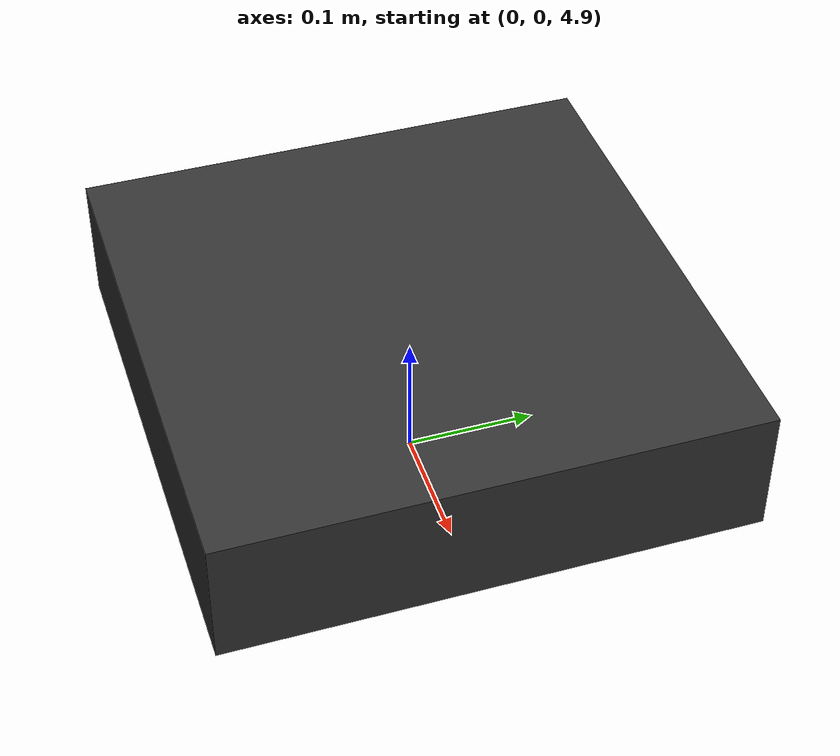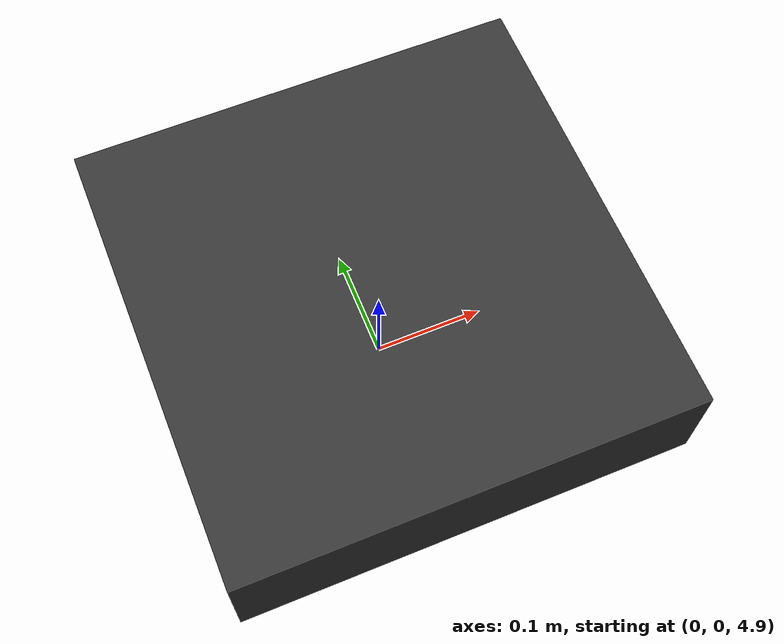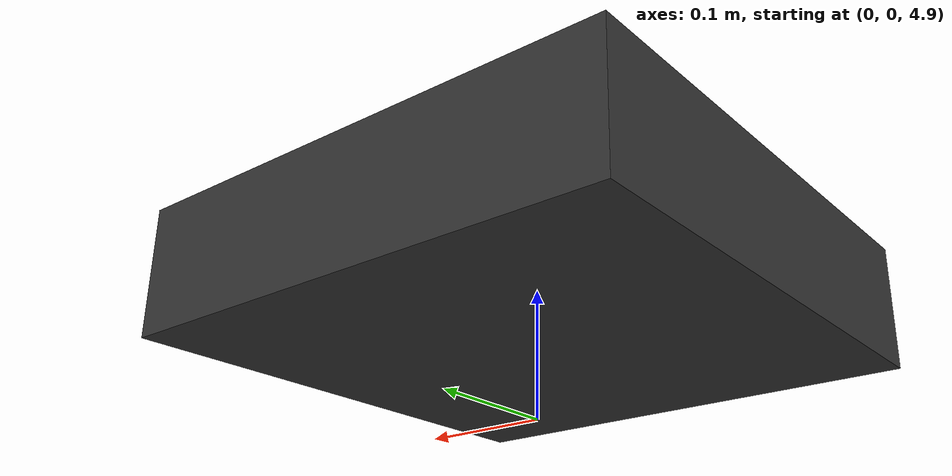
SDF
<?xml version="1.0" ?>
<sdf version="1.6">
  <model name="test_drone">
    <static>true</static> <pose>0 0 5.0 0 0 0</pose>

    <link name="base_link">
      <visual name="visual">
        <geometry><box><size>0.4 0.4 0.1</size></box></geometry>
        <material><ambient>0.2 0.2 0.2 1</ambient></material>
      </visual>
    </link>

    <link name="camera_link">
      <pose>0 0 -0.06 0 1.5708 0</pose>
      <sensor name="camera" type="camera">
        <always_on>true</always_on>
        <update_rate>30.0</update_rate>
        <camera>
          <horizontal_fov>1.047</horizontal_fov>
          <image>
            <width>1920</width>
            <height>1080</height>
            <format>R8G8B8</format>
          </image>
          <clip><near>0.1</near><far>100</far></clip>
        </camera>
        <plugin name="camera_controller" filename="libgazebo_ros_camera.so">
          <ros>
            <namespace>drone</namespace>
            <remapping>image_raw:=camera/image_raw</remapping>
          </ros>
          <camera_name>bottom_camera</camera_name>
          <frame_name>camera_link</frame_name>
        </plugin>
      </sensor>
    </link>

    <joint name="camera_joint" type="fixed">
      <parent>base_link</parent>
      <child>camera_link</child>
    </joint>
  </model>
</sdf>
